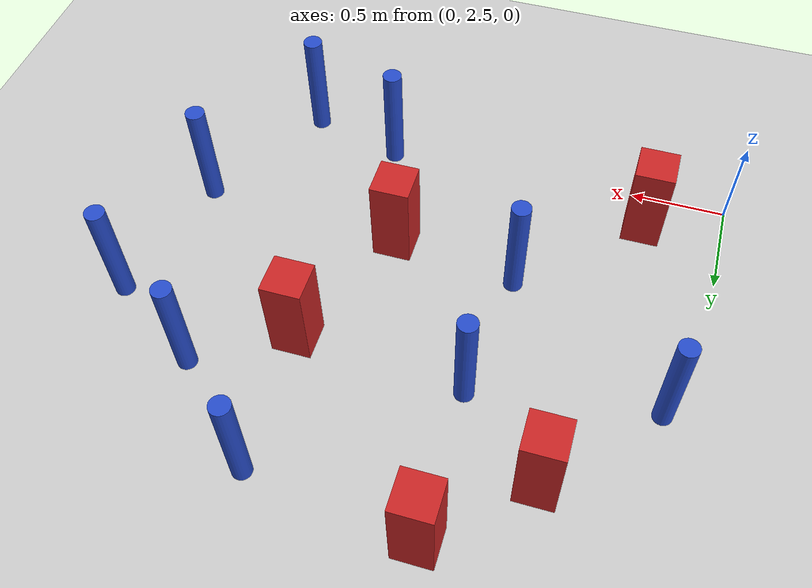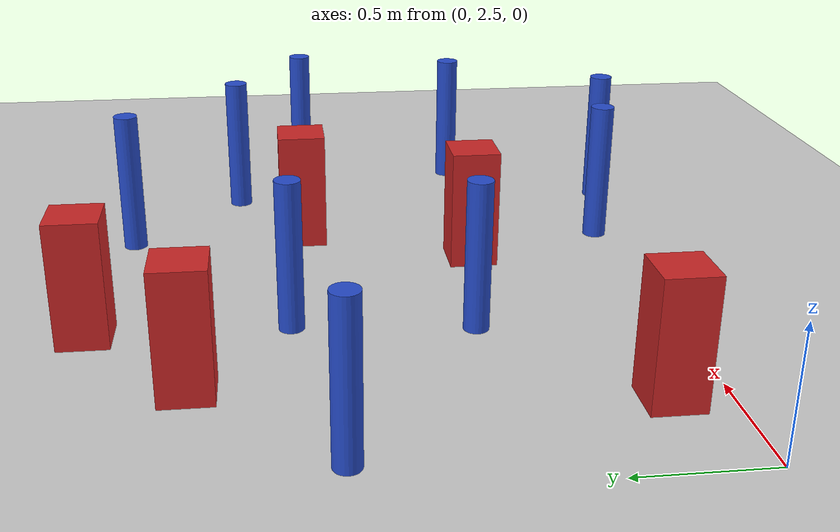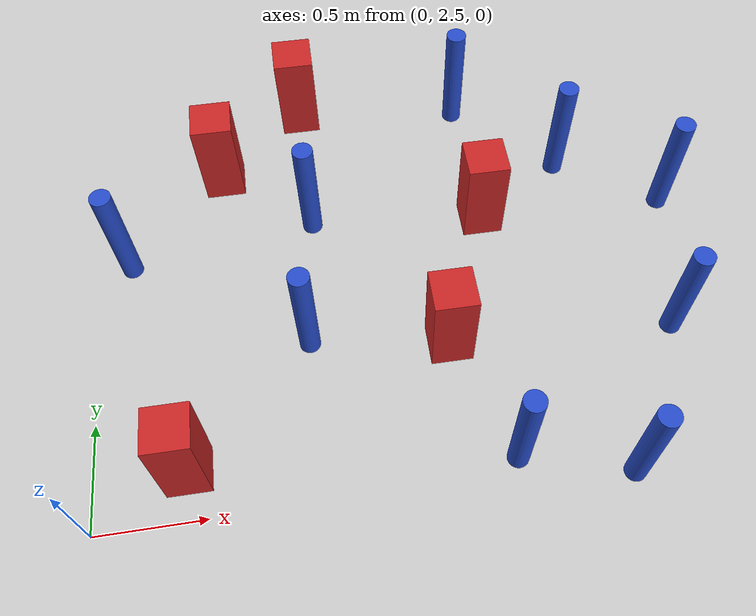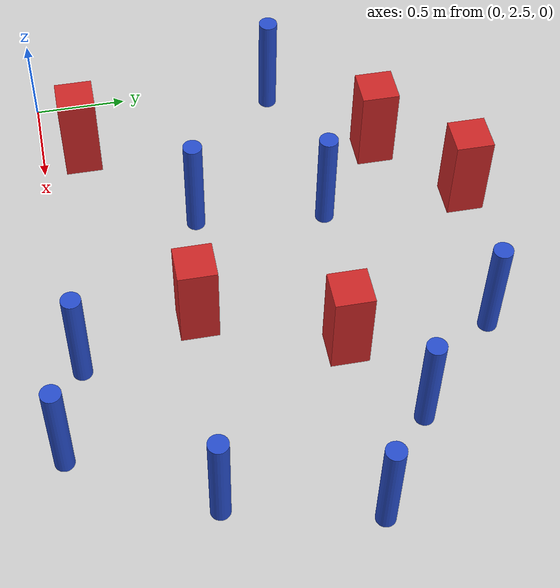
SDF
<sdf version="1.6">
 <world name="default">
  <model name="ground_plane">
   <static>1</static>
   <link name="link">
    <collision name="collision">
     <geometry><plane><normal>0 0 1</normal><size>100 100</size></plane></geometry>
     <surface><friction><ode><mu>100</mu><mu2>50</mu2></ode></friction></surface>
    </collision>
    <visual name="visual">
     <cast_shadows>0</cast_shadows>
     <geometry><plane><normal>0 0 1</normal><size>100 100</size></plane></geometry>
     <material>
      <ambient>1.0 1.0 1.0 1.0</ambient>
      <diffuse>0.8 0.8 0.8 1.0</diffuse>
      <specular>0.01 0.01 0.01 1.000000</specular>
     </material>
    </visual>
   </link>
  </model>
  <model name="square_post_obstacle12">
   <static>true</static>
   <pose>1.9486642513 3.89404540649 1.91545236811e-07 -7.35059704564e-06 1.12565212e-07 2.39332434364e-05</pose>
   <link name="link">
    <pose>0 0 0.25 0 -0 0</pose>
    <inertial>
     <mass>100</mass>
     <inertia>
      <ixx>0.166667</ixx>
      <ixy>0</ixy>
      <ixz>0</ixz>
      <iyy>0.166667</iyy>
      <iyz>0</iyz>
      <izz>0.166667</izz>
     </inertia>
    </inertial>
    <collision name="collision"><geometry><box><size>.2 .2 .5</size></box></geometry></collision>
    <visual name="visual">
     <geometry><box><size>.2 .2 .5</size></box></geometry>
     <material>
      <script><name>Gazebo/Red</name><uri>file://media/materials/scripts/gazebo.material</uri></script>
     </material>
    </visual>
   </link>
  </model>
  <model name="square_post_obstacle35">
   <static>true</static>
   <pose>0.418649851266 2.72194955402 1.91545236811e-07 -7.35059704564e-06 1.12565212e-07 2.39332434364e-05</pose>
   <link name="link">
    <pose>0 0 0.25 0 -0 0</pose>
    <inertial>
     <mass>100</mass>
     <inertia>
      <ixx>0.166667</ixx>
      <ixy>0</ixy>
      <ixz>0</ixz>
      <iyy>0.166667</iyy>
      <iyz>0</iyz>
      <izz>0.166667</izz>
     </inertia>
    </inertial>
    <collision name="collision"><geometry><box><size>.2 .2 .5</size></box></geometry></collision>
    <visual name="visual">
     <geometry><box><size>.2 .2 .5</size></box></geometry>
     <material>
      <script><name>Gazebo/Red</name><uri>file://media/materials/scripts/gazebo.material</uri></script>
     </material>
    </visual>
   </link>
  </model>
  <model name="pole_obstacle34">
   <static>true</static>
   <pose>0.150805727323 3.83194748476 7.38925637345e-09 -8.47170692792e-08 1.24976764391e-08 -1.74513093041e-07</pose>
   <link name="link">
    <pose>0 0 0.3 0 -0 0</pose>
    <inertial>
     <mass>1</mass>
     <inertia><ixx>0.145833</ixx><ixy>0</ixy><ixz>0</ixz><iyy>0.145833</iyy><iyz>0</iyz><izz>0.125</izz></inertia>
    </inertial>
    <collision name="collision">
     <geometry><cylinder><radius>0.05</radius><length>.6</length></cylinder></geometry>
    </collision>
    <visual name="visual">
     <geometry><cylinder><radius>0.05</radius><length>.6</length></cylinder></geometry>
     <material>
      <script><name>Gazebo/Blue</name><uri>file://media/materials/scripts/gazebo.material</uri></script>
     </material>
    </visual>
   </link>
  </model>
  <model name="pole_obstacle54">
   <static>true</static>
   <pose>2.73887575974 3.12009232815 7.38925637345e-09 -8.47170692798e-08 1.24976764939e-08 -1.74513093025e-07</pose>
   <link name="link">
    <pose>0 0 0.3 0 -0 0</pose>
    <inertial>
     <mass>1</mass>
     <inertia><ixx>0.145833</ixx><ixy>0</ixy><ixz>0</ixz><iyy>0.145833</iyy><iyz>0</iyz><izz>0.125</izz></inertia>
    </inertial>
    <collision name="collision">
     <geometry><cylinder><radius>0.05</radius><length>.6</length></cylinder></geometry>
    </collision>
    <visual name="visual">
     <geometry><cylinder><radius>0.05</radius><length>.6</length></cylinder></geometry>
     <material>
      <script><name>Gazebo/Blue</name><uri>file://media/materials/scripts/gazebo.material</uri></script>
     </material>
    </visual>
   </link>
  </model>
  <model name="square_post_obstacle69">
   <static>true</static>
   <pose>1.07616729477 4.73868065113 1.91545236811e-07 -7.35059704564e-06 1.12565212e-07 2.39332434364e-05</pose>
   <link name="link">
    <pose>0 0 0.25 0 -0 0</pose>
    <inertial>
     <mass>100</mass>
     <inertia>
      <ixx>0.166667</ixx>
      <ixy>0</ixy>
      <ixz>0</ixz>
      <iyy>0.166667</iyy>
      <iyz>0</iyz>
      <izz>0.166667</izz>
     </inertia>
    </inertial>
    <collision name="collision"><geometry><box><size>.2 .2 .5</size></box></geometry></collision>
    <visual name="visual">
     <geometry><box><size>.2 .2 .5</size></box></geometry>
     <material>
      <script><name>Gazebo/Red</name><uri>file://media/materials/scripts/gazebo.material</uri></script>
     </material>
    </visual>
   </link>
  </model>
  <model name="pole_obstacle87">
   <static>true</static>
   <pose>1.85846566971 2.57275079863 7.38925637345e-09 -8.47170692799e-08 1.24976765053e-08 -1.74513093017e-07</pose>
   <link name="link">
    <pose>0 0 0.3 0 -0 0</pose>
    <inertial>
     <mass>1</mass>
     <inertia><ixx>0.145833</ixx><ixy>0</ixy><ixz>0</ixz><iyy>0.145833</iyy><iyz>0</iyz><izz>0.125</izz></inertia>
    </inertial>
    <collision name="collision">
     <geometry><cylinder><radius>0.05</radius><length>.6</length></cylinder></geometry>
    </collision>
    <visual name="visual">
     <geometry><cylinder><radius>0.05</radius><length>.6</length></cylinder></geometry>
     <material>
      <script><name>Gazebo/Blue</name><uri>file://media/materials/scripts/gazebo.material</uri></script>
     </material>
    </visual>
   </link>
  </model>
  <model name="pole_obstacle107">
   <static>true</static>
   <pose>1.93582935623 4.63736850619 7.38925637345e-09 -8.47170692799e-08 1.24976765033e-08 -1.74513093018e-07</pose>
   <link name="link">
    <pose>0 0 0.3 0 -0 0</pose>
    <inertial>
     <mass>1</mass>
     <inertia><ixx>0.145833</ixx><ixy>0</ixy><ixz>0</ixz><iyy>0.145833</iyy><iyz>0</iyz><izz>0.125</izz></inertia>
    </inertial>
    <collision name="collision">
     <geometry><cylinder><radius>0.05</radius><length>.6</length></cylinder></geometry>
    </collision>
    <visual name="visual">
     <geometry><cylinder><radius>0.05</radius><length>.6</length></cylinder></geometry>
     <material>
      <script><name>Gazebo/Blue</name><uri>file://media/materials/scripts/gazebo.material</uri></script>
     </material>
    </visual>
   </link>
  </model>
  <model name="pole_obstacle145">
   <static>true</static>
   <pose>1.07596527728 3.97298461516 7.38925637345e-09 -8.47170692799e-08 1.24976765077e-08 -1.74513093019e-07</pose>
   <link name="link">
    <pose>0 0 0.3 0 -0 0</pose>
    <inertial>
     <mass>1</mass>
     <inertia><ixx>0.145833</ixx><ixy>0</ixy><ixz>0</ixz><iyy>0.145833</iyy><iyz>0</iyz><izz>0.125</izz></inertia>
    </inertial>
    <collision name="collision">
     <geometry><cylinder><radius>0.05</radius><length>.6</length></cylinder></geometry>
    </collision>
    <visual name="visual">
     <geometry><cylinder><radius>0.05</radius><length>.6</length></cylinder></geometry>
     <material>
      <script><name>Gazebo/Blue</name><uri>file://media/materials/scripts/gazebo.material</uri></script>
     </material>
    </visual>
   </link>
  </model>
  <model name="pole_obstacle165">
   <static>true</static>
   <pose>2.4169144233 4.17674018811 7.38925637345e-09 -8.47170692798e-08 1.24976765033e-08 -1.74513093019e-07</pose>
   <link name="link">
    <pose>0 0 0.3 0 -0 0</pose>
    <inertial>
     <mass>1</mass>
     <inertia><ixx>0.145833</ixx><ixy>0</ixy><ixz>0</ixz><iyy>0.145833</iyy><iyz>0</iyz><izz>0.125</izz></inertia>
    </inertial>
    <collision name="collision">
     <geometry><cylinder><radius>0.05</radius><length>.6</length></cylinder></geometry>
    </collision>
    <visual name="visual">
     <geometry><cylinder><radius>0.05</radius><length>.6</length></cylinder></geometry>
     <material>
      <script><name>Gazebo/Blue</name><uri>file://media/materials/scripts/gazebo.material</uri></script>
     </material>
    </visual>
   </link>
  </model>
  <model name="square_post_obstacle196">
   <static>true</static>
   <pose>0.637919669569 4.34102443184 1.91545236811e-07 -7.35059704564e-06 1.12565212e-07 2.39332434364e-05</pose>
   <link name="link">
    <pose>0 0 0.25 0 -0 0</pose>
    <inertial>
     <mass>100</mass>
     <inertia>
      <ixx>0.166667</ixx>
      <ixy>0</ixy>
      <ixz>0</ixz>
      <iyy>0.166667</iyy>
      <iyz>0</iyz>
      <izz>0.166667</izz>
     </inertia>
    </inertial>
    <collision name="collision"><geometry><box><size>.2 .2 .5</size></box></geometry></collision>
    <visual name="visual">
     <geometry><box><size>.2 .2 .5</size></box></geometry>
     <material>
      <script><name>Gazebo/Red</name><uri>file://media/materials/scripts/gazebo.material</uri></script>
     </material>
    </visual>
   </link>
  </model>
  <model name="square_post_obstacle200">
   <static>true</static>
   <pose>1.6579136891 3.18275360737 1.91545236811e-07 -7.35059704564e-06 1.12565212e-07 2.39332434364e-05</pose>
   <link name="link">
    <pose>0 0 0.25 0 -0 0</pose>
    <inertial>
     <mass>100</mass>
     <inertia>
      <ixx>0.166667</ixx>
      <ixy>0</ixy>
      <ixz>0</ixz>
      <iyy>0.166667</iyy>
      <iyz>0</iyz>
      <izz>0.166667</izz>
     </inertia>
    </inertial>
    <collision name="collision"><geometry><box><size>.2 .2 .5</size></box></geometry></collision>
    <visual name="visual">
     <geometry><box><size>.2 .2 .5</size></box></geometry>
     <material>
      <script><name>Gazebo/Red</name><uri>file://media/materials/scripts/gazebo.material</uri></script>
     </material>
    </visual>
   </link>
  </model>
  <model name="pole_obstacle194">
   <static>true</static>
   <pose>0.999885356067 3.27692761729 7.38925637345e-09 -8.47170692799e-08 1.24976765046e-08 -1.74513093018e-07</pose>
   <link name="link">
    <pose>0 0 0.3 0 -0 0</pose>
    <inertial>
     <mass>1</mass>
     <inertia><ixx>0.145833</ixx><ixy>0</ixy><ixz>0</ixz><iyy>0.145833</iyy><iyz>0</iyz><izz>0.125</izz></inertia>
    </inertial>
    <collision name="collision">
     <geometry><cylinder><radius>0.05</radius><length>.6</length></cylinder></geometry>
    </collision>
    <visual name="visual">
     <geometry><cylinder><radius>0.05</radius><length>.6</length></cylinder></geometry>
     <material>
      <script><name>Gazebo/Blue</name><uri>file://media/materials/scripts/gazebo.material</uri></script>
     </material>
    </visual>
   </link>
  </model>
  <model name="pole_obstacle214">
   <static>true</static>
   <pose>2.35400000957 2.43597002078 7.38925637345e-09 -8.47170692798e-08 1.24976764939e-08 -1.74513093025e-07</pose>
   <link name="link">
    <pose>0 0 0.3 0 -0 0</pose>
    <inertial>
     <mass>1</mass>
     <inertia><ixx>0.145833</ixx><ixy>0</ixy><ixz>0</ixz><iyy>0.145833</iyy><iyz>0</iyz><izz>0.125</izz></inertia>
    </inertial>
    <collision name="collision">
     <geometry><cylinder><radius>0.05</radius><length>.6</length></cylinder></geometry>
    </collision>
    <visual name="visual">
     <geometry><cylinder><radius>0.05</radius><length>.6</length></cylinder></geometry>
     <material>
      <script><name>Gazebo/Blue</name><uri>file://media/materials/scripts/gazebo.material</uri></script>
     </material>
    </visual>
   </link>
  </model>
  <model name="pole_obstacle228">
   <static>true</static>
   <pose>2.90969000957 3.86186002078 7.38925637345e-09 -8.471706928e-08 1.24976765098e-08 -1.74513093016e-07</pose>
   <link name="link">
    <pose>0 0 0.3 0 -0 0</pose>
    <inertial>
     <mass>1</mass>
     <inertia><ixx>0.145833</ixx><ixy>0</ixy><ixz>0</ixz><iyy>0.145833</iyy><iyz>0</iyz><izz>0.125</izz></inertia>
    </inertial>
    <collision name="collision">
     <geometry><cylinder><radius>0.05</radius><length>.6</length></cylinder></geometry>
    </collision>
    <visual name="visual">
     <geometry><cylinder><radius>0.05</radius><length>.6</length></cylinder></geometry>
     <material>
      <script><name>Gazebo/Blue</name><uri>file://media/materials/scripts/gazebo.material</uri></script>
     </material>
    </visual>
   </link>
  </model>
 </world>
</sdf>
